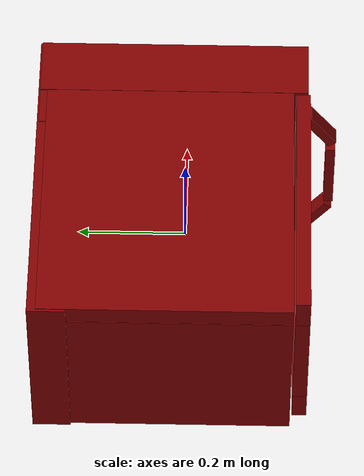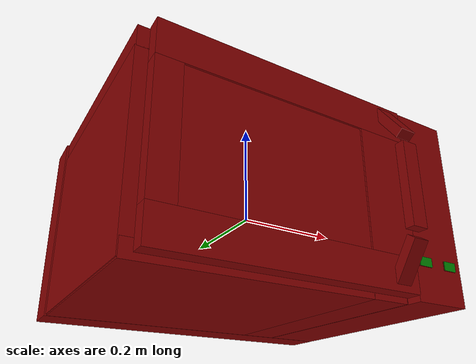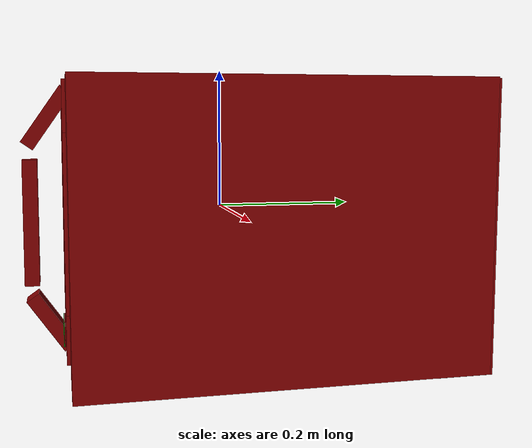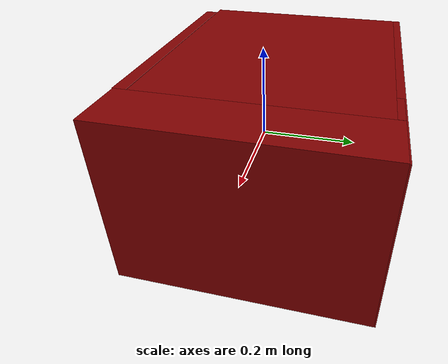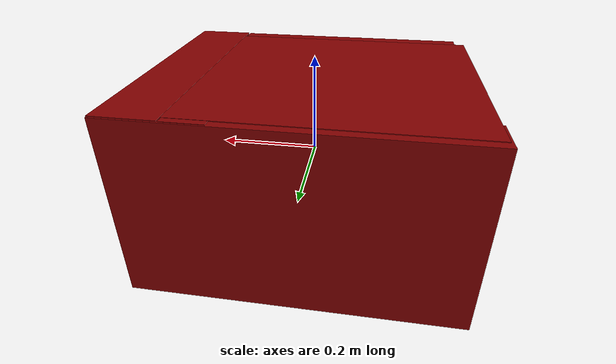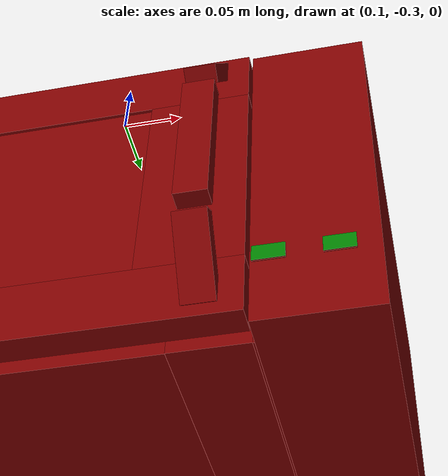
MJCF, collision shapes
<?xml version='1.0' encoding='UTF-8'?>
<mujoco model="model">
  <option timestep="0.002" gravity="0.0 0.0 -9.81"/>
  <compiler angle="radian"/>
  <asset><mesh file="visuals/door.obj" name="door_vis"/><mesh file="visuals/door_Clear.obj" name="door_Clear_vis"/><mesh file="visuals/Body001.obj" name="Body001_vis"/><mesh file="visuals/Button001.obj" name="Button001_vis"/><mesh file="visuals/Button002.obj" name="Button002_vis"/><mesh file="visuals/Disc001.obj" name="Disc001_vis"/><texture file="visuals/T_BC001.png" name="Body001_material" type="2d"/>0
        <material name="Body001_material" rgba="1 1 1 1.0" texture="Body001_material" shininess="0.2512328028678894" specular="2"/><texture file="visuals/T_BC001.png" name="door_material" type="2d"/><material name="door_material" rgba="1 1 1 1.0" texture="door_material" shininess="0.2512328028678894" specular="0.3103448502657381"/><material name="door_Clear_material" rgba="0.031017765402793884 0.031017765402793884 0.031017765402793884 0.8500000238418579" shininess="0.2512328028678894" specular="0.3103448502657381"/><texture file="visuals/T_BC001.png" name="Button001_material" type="2d"/><material name="Button001_material" rgba="1 1 1 1.0" texture="Button001_material" shininess="0.2512328028678894" specular="2"/><texture file="visuals/T_BC001.png" name="Button002_material" type="2d"/><material name="Button002_material" rgba="1 1 1 1.0" texture="Button002_material" shininess="0.2512328028678894" specular="2"/><texture file="visuals/T_BC001.png" name="Disc001_material" type="2d"/><material name="Disc001_material" rgba="1 1 1 1.0" texture="Disc001_material" shininess="0.2512328028678894" specular="0.3103448502657381"/></asset>
  <default>
    <default class="visual">
      <geom conaffinity="0" contype="0" group="1" type="mesh"/>
    </default>
    <default class="collision">
      <geom group="0" rgba="0.5 0 0 0.5"/>
    </default>
    <default class="spawn">
      <geom group="0" rgba="1 1 1 0.5" contype="0" conaffinity="0"/>
      <site group="0" rgba="1 1 1 0.5"/>
    </default>
    <default class="region">
      <geom group="1" conaffinity="0" contype="0" rgba="0 1 0 0"/>
    </default>
  </default>
  <worldbody>
    <body>
      <body name="object">
        <geom class="collision" type="box" pos="0.21553601324558258 -0.23341603577136993 -0.11233450472354889" size="0.014708410017192364 0.0004353104450274259 0.00819513387978077" quat="1.0 0.0 0.0 0.0" name="stop_button" rgba="0.0 0.5 0 0.5"/>
        <geom class="collision" type="box" pos="0.2762804329395294 -0.23341603577136993 -0.11233450472354889" size="0.01429767720401287 0.0004353107069619 0.008195137605071068" quat="1.0 0.0 0.0 0.0" name="start_button" rgba="0.0 0.5 0 0.5"/>
        <geom class="collision" type="cylinder" pos="-0.07717755436897278 0.0024911665823310614 -0.13851025700569153" size="0.1406339704990387 0.001430506817996502" quat="1.0 0.0 0.0 0.0" name="tray" rgba="0 1 0 0.5"/>
        <geom mesh="Body001_vis" type="mesh" solimp="0.998 0.998 0.001" solref="0.001 1" friction="0.95 0.3 0.1" class="visual" material="Body001_material"/>
        <geom class="collision" type="box" pos="-0.0009973121341317892 0.2435174286365509 -0.0018854695372283459" size="0.3122279942035675 0.03519432619214058 0.18011455237865448" quat="1.0 0.0 0.0 0.0"/>
        <geom class="collision" type="box" pos="0.2547319531440735 0.02467469498515129 -0.0008303769864141941" size="0.056875623762607574 0.25097209215164185 0.1808701455593109" quat="1.0 0.0 0.0 0.0"/>
        <geom class="collision" type="box" pos="-0.0009973046835511923 0.031449586153030396 -0.16667436063289642" size="0.30783289670944214 0.2311689555644989 0.015025638043880463" quat="1.0 0.0 0.0 0.0"/>
        <geom class="collision" type="box" pos="-0.2908845543861389 0.0314495787024498 -0.017998265102505684" size="0.019709387794137 0.2311689555644989 0.16133739054203033" quat="1.0 0.0 0.0 0.0"/>
        <geom class="collision" type="box" pos="-0.0009973046835511923 0.031449586153030396 0.16084490716457367" size="0.30783289670944214 0.2311689555644989 0.01878025382757187" quat="1.0 0.0 0.0 0.0"/>
        <geom class="collision" type="box" pos="0.15879985690116882 0.037744976580142975 -0.0012807155726477504" size="0.03719974681735039 0.23790179193019867 0.18041937053203583" quat="1.0 0.0 0.0 0.0"/>
        <body name="door">
          <joint axis="0.0 0.0 1.0" pos="-0.295602947473526 -0.2165616750717163 0.001789693720638752" limited="true" name="microjoint" range="-1.5707963267948966 0.0" type="hinge" damping="1" frictionloss="1" armature=".01" stiffness="0.05"/>
          <geom mesh="door_vis" type="mesh" solimp="0.998 0.998 0.001" solref="0.001 1" friction="0.95 0.3 0.1" class="visual" material="door_material"/>
          <geom class="collision" type="box" pos="-0.07481791824102402 -0.22670111060142517 0.002993716625496745" size="0.1664552092552185 0.000493787054438144 0.10936874151229858" quat="1.0 0.0 0.0 0.0"/>
          <geom class="collision" type="box" pos="-0.04774235934019089 -0.2172800898551941 0.14618535339832306" size="0.24249830842018127 0.013492998667061329 0.031814683228731155" quat="1.0 0.0 0.0 0.0"/>
          <geom class="collision" type="box" pos="-0.04774235934019089 -0.2172800749540329 -0.14076998829841614" size="0.24249815940856934 0.013492994010448456 0.031230108812451363" quat="1.0 0.0 0.0 0.0"/>
          <geom class="collision" type="box" pos="0.14533431828022003 -0.2172800898551941 0.0024153348058462143" size="0.04942033439874649 0.013492989353835583 0.11195611208677292" quat="1.0 0.0 0.0 0.0"/>
          <geom class="collision" type="box" pos="-0.26759421825408936 -0.2172800749540329 0.002415318042039871" size="0.0226448941975832 0.01349298469722271 0.11195603013038635" quat="1.0 0.0 0.0 0.0"/>
          <geom class="collision" type="box" pos="0.15714409947395325 -0.27046337723731995 0.0024153206031769514" size="0.015484350733458996 0.008997862227261066 0.07799571007490158" quat="1.0 0.0 0.0 0.0" name="door_handle_main"/>
          <geom class="collision" type="box" pos="0.15714409947395325 -0.2492614984512329 0.1319640725851059" size="0.042043790221214294 0.008997862227261066 0.015484345145523548" quat="0.6743797659873962 -0.21263112127780914 -0.6743797063827515 0.21263112127780914"/>
          <geom class="collision" type="box" pos="0.15714409947395325 -0.24783329665660858 -0.12287113815546036" size="0.03955378383398056 0.008997862227261066 0.015484345145523548" quat="0.21263204514980316 -0.6743797063827515 -0.21263018250465393 0.6743797063827515"/>
          <geom class="collision" type="box" pos="-0.0478970929980278 -0.22549018263816833 0.0029998801182955503" size="0.24111680686473846 0.0020525299478322268 0.17322255671024323" quat="1.0 0.0 0.0 0.0" name="door_main"/>
          <body name="door_Clear">
            <geom mesh="door_Clear_vis" type="mesh" solimp="0.998 0.998 0.001" solref="0.001 1" friction="0.95 0.3 0.1" class="visual" material="door_Clear_material"/>
            <geom class="collision" type="box" pos="-0.07481791824102402 -0.22670111060142517 0.002993716625496745" size="0.1664552092552185 0.000493787054438144 0.10936874151229858" quat="1.0 0.0 0.0 0.0"/>
          </body>
        </body>
        <body name="Button001">
          <joint axis="0.0 1.0 0.0" pos="0.21553492546081543 -0.23170559108257294 -0.11240941286087036" limited="true" name="Button001_joint" range="0.0 0.0015" type="slide" damping="1" frictionloss="1" armature=".01" stiffness="0.05"/>
          <geom mesh="Button001_vis" type="mesh" solimp="0.998 0.998 0.001" solref="0.001 1" friction="0.95 0.3 0.1" class="visual" material="Button001_material"/>
          <geom class="collision" type="box" pos="0.21559084951877594 -0.23189473152160645 -0.11233450472354889" size="0.01468407642096281 0.00048725242959335446 0.00819506123661995" quat="1.0 0.0 0.0 0.0"/>
        </body>
        <body name="Button002">
          <joint axis="0.0 1.0 0.0" pos="0.2762901782989502 -0.23170559108257294 -0.11256682872772217" limited="true" name="Button002_joint" range="0.0 0.0015" type="slide" damping="1" frictionloss="1" armature=".01" stiffness="0.05"/>
          <geom mesh="Button002_vis" type="mesh" solimp="0.998 0.998 0.001" solref="0.001 1" friction="0.95 0.3 0.1" class="visual" material="Button002_material"/>
          <geom class="collision" type="box" pos="0.2762479782104492 -0.23189473152160645 -0.11233450472354889" size="0.014226472936570644 0.00044474360765889287 0.008195069618523121" quat="1.0 0.0 0.0 0.0"/>
        </body>
        <body name="Disc001">
          <joint axis="0.0 0.0 1.0" pos="-0.07717743515968323 0.002491474151611328 -0.12858663499355316" limited="false" name="Disc001_joint" range="0 360" type="hinge" damping="1" frictionloss="1" armature=".01" stiffness="0.05"/>
          <geom mesh="Disc001_vis" type="mesh" solimp="0.998 0.998 0.001" solref="0.001 1" friction="0.95 0.3 0.1" class="visual" material="Disc001_material"/>
          <geom class="collision" type="cylinder" pos="-0.07717755436897278 0.0024911672808229923 -0.14676451683044434" size="0.14063645899295807 0.0035976048093289137" quat="1.0 0.0 0.0 0.0"/>
        </body>
        <geom class="region" name="reg_int" type="box" pos="-0.0746072567999363 0.004083283245563507 -6.195157766342163e-05" size="0.1920177432000637 0.19966331666707993 0.13801779395341873"/>
        <geom class="region" name="reg_main" type="box" pos="0.0 0.024232707917690277 -3.725290298461914e-09" size="0.316000057220459 0.25600571727752686 0.18300001120567322"/>
      <geom class="region" name="reg_tray" type="cylinder" pos="-0.07717755436897278 0.0024911665823310614 0.0004380460940301423" size="0.1406339704990387 0.13651779628172517"/></body>
    </body>
  </worldbody>
  <actuator>
    <motor name="microjoint_actuator" joint="microjoint" gear="10"/>
    <motor name="Button001_joint_actuator" joint="Button001_joint" gear="0.5"/>
    <motor name="Button002_joint_actuator" joint="Button002_joint" gear="0.5"/>
    <motor name="Disc001_joint_actuator" joint="Disc001_joint" gear="0.5"/>
  </actuator>
</mujoco>
